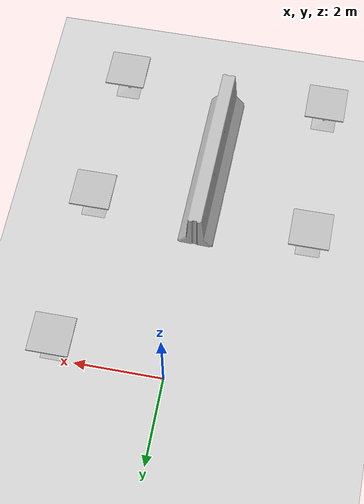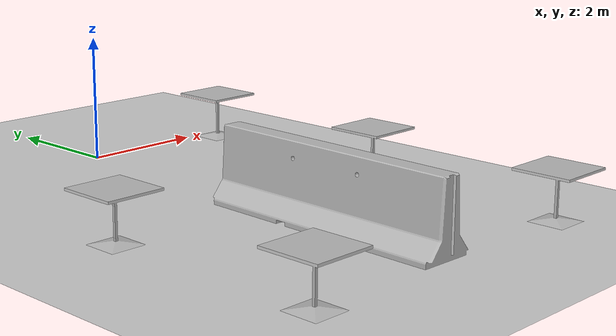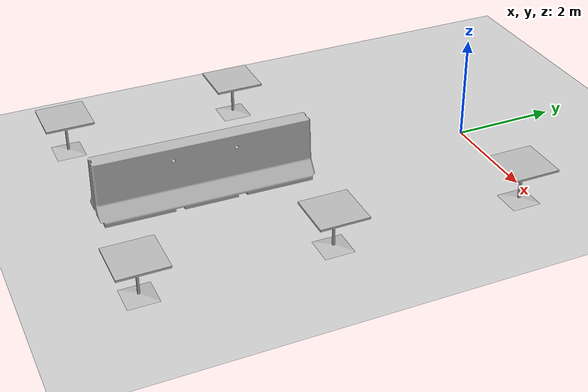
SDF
<sdf version="1.6">
 <world name="default">
  <light name="sun" type="directional">
   <pose>0 0 15 0 -0 0</pose>
   <diffuse>1 1 1 1</diffuse>
   <specular>0.1 0.1 0.1 1</specular>
   <attenuation>
    <range>1000</range>
    <constant>0.9</constant>
    <linear>0.01</linear>
    <quadratic>0.001</quadratic>
   </attenuation>
   <direction>-0.5 0.5 -1</direction>
  </light>
  <model name="ground_plane">
   <static>1</static>
   <link name="link">
    <collision name="collision">
     <geometry><plane><normal>0 0 1</normal><size>100 100</size></plane></geometry>
     <surface><friction><ode><mu>100</mu><mu2>50</mu2></ode></friction></surface>
    </collision>
    <visual name="visual">
     <transparency>1</transparency>
     <cast_shadows>0</cast_shadows>
     <geometry><plane><normal>0 0 1</normal><size>100 100</size></plane></geometry>
     <material>
      <script><uri>file://media/materials/scripts/gazebo.material</uri><name>Gazebo/Grey</name></script>
     </material>
    </visual>
   </link>
  </model>
  <gravity>0 0 -9.8</gravity>
  <magnetic_field>6e-06 2.3e-05 -4.2e-05</magnetic_field>
  <atmosphere type="adiabatic"/>
  <physics name="default_physics" default="0" type="ode">
   <max_step_size>0.001</max_step_size>
   <real_time_factor>1</real_time_factor>
   <real_time_update_rate>1000</real_time_update_rate>
  </physics>
  <scene><ambient>0.4 0.4 0.4 1</ambient><background>0.7 0.7 0.7 1</background><shadows>1</shadows></scene>
  <spherical_coordinates>
   <surface_model>EARTH_WGS84</surface_model>
   <latitude_deg>0</latitude_deg>
   <longitude_deg>0</longitude_deg>
   <elevation>0</elevation>
   <heading_deg>0</heading_deg>
  </spherical_coordinates>
  <model name="cafe_table">
   <static>1</static>
   <link name="link">
    <collision name="surface">
     <pose>0 0 0.755 0 -0 0</pose>
     <geometry><box><size>0.913 0.913 0.04</size></box></geometry>
    </collision>
    <collision name="column">
     <pose>0 0 0.37 0 -0 0</pose>
     <geometry><box><size>0.042 0.042 0.74</size></box></geometry>
    </collision>
    <collision name="base">
     <pose>0 0 0.02 0 -0 0</pose>
     <geometry><box><size>0.56 0.56 0.04</size></box></geometry>
    </collision>
    <visual name="visual">
     <geometry><mesh><uri>model://cafe_table/meshes/cafe_table.dae</uri></mesh></geometry>
    </visual>
   </link>
   <pose>-2.63102 -3.81805 0 0 -0 0</pose>
  </model>
  <model name="cafe_table_clone">
   <static>1</static>
   <link name="link">
    <collision name="surface">
     <pose>0 0 0.755 0 -0 0</pose>
     <geometry><box><size>0.913 0.913 0.04</size></box></geometry>
    </collision>
    <collision name="column">
     <pose>0 0 0.37 0 -0 0</pose>
     <geometry><box><size>0.042 0.042 0.74</size></box></geometry>
    </collision>
    <collision name="base">
     <pose>0 0 0.02 0 -0 0</pose>
     <geometry><box><size>0.56 0.56 0.04</size></box></geometry>
    </collision>
    <visual name="visual">
     <geometry><mesh><uri>model://cafe_table/meshes/cafe_table.dae</uri></mesh></geometry>
    </visual>
   </link>
   <pose>-2.51425 -7.25856 0 0 -0 0</pose>
  </model>
  <model name="cafe_table_clone_0">
   <static>1</static>
   <link name="link">
    <collision name="surface">
     <pose>0 0 0.755 0 -0 0</pose>
     <geometry><box><size>0.913 0.913 0.04</size></box></geometry>
    </collision>
    <collision name="column">
     <pose>0 0 0.37 0 -0 0</pose>
     <geometry><box><size>0.042 0.042 0.74</size></box></geometry>
    </collision>
    <collision name="base">
     <pose>0 0 0.02 0 -0 0</pose>
     <geometry><box><size>0.56 0.56 0.04</size></box></geometry>
    </collision>
    <visual name="visual">
     <geometry><mesh><uri>model://cafe_table/meshes/cafe_table.dae</uri></mesh></geometry>
    </visual>
   </link>
   <pose>2.30451 -7.34544 0 0 -0 0</pose>
  </model>
  <model name="cafe_table_clone_1">
   <static>1</static>
   <link name="link">
    <collision name="surface">
     <pose>0 0 0.755 0 -0 0</pose>
     <geometry><box><size>0.913 0.913 0.04</size></box></geometry>
    </collision>
    <collision name="column">
     <pose>0 0 0.37 0 -0 0</pose>
     <geometry><box><size>0.042 0.042 0.74</size></box></geometry>
    </collision>
    <collision name="base">
     <pose>0 0 0.02 0 -0 0</pose>
     <geometry><box><size>0.56 0.56 0.04</size></box></geometry>
    </collision>
    <visual name="visual">
     <geometry><mesh><uri>model://cafe_table/meshes/cafe_table.dae</uri></mesh></geometry>
    </visual>
   </link>
   <pose>2.39729 -3.94001 0 0 -0 0</pose>
  </model>
  <model name="cafe_table_clone_2">
   <static>1</static>
   <link name="link">
    <collision name="surface">
     <pose>0 0 0.755 0 -0 0</pose>
     <geometry><box><size>0.913 0.913 0.04</size></box></geometry>
    </collision>
    <collision name="column">
     <pose>0 0 0.37 0 -0 0</pose>
     <geometry><box><size>0.042 0.042 0.74</size></box></geometry>
    </collision>
    <collision name="base">
     <pose>0 0 0.02 0 -0 0</pose>
     <geometry><box><size>0.56 0.56 0.04</size></box></geometry>
    </collision>
    <visual name="visual">
     <geometry><mesh><uri>model://cafe_table/meshes/cafe_table.dae</uri></mesh></geometry>
    </visual>
   </link>
   <pose>2.47633 -0.274083 0 0 -0 0</pose>
  </model>
  <model name="jersey_barrier">
   <static>1</static>
   <link name="link">
    <visual name="visual">
     <geometry><mesh><uri>model://jersey_barrier/meshes/jersey_barrier.dae</uri></mesh></geometry>
    </visual>
    <collision name="upright">
     <pose>0 0 0.5715 0 -0 0</pose>
     <geometry><box><size>4.06542 0.3063 1.143</size></box></geometry>
    </collision>
    <collision name="base">
     <pose>0 0 0.032258 0 -0 0</pose>
     <geometry><box><size>4.06542 0.8107 0.064516</size></box></geometry>
    </collision>
    <collision name="base2">
     <pose>0 0 0.1 0 -0 0</pose>
     <geometry><box><size>4.06542 0.65 0.1</size></box></geometry>
    </collision>
    <collision name="base3">
     <pose>0 0 0.2 0 -0 0</pose>
     <geometry><box><size>4.06542 0.5 0.1</size></box></geometry>
    </collision>
    <collision name="left-angle">
     <pose>0 -0.224 0.2401 0.9 -0 0</pose>
     <geometry><box><size>4.06542 0.5 0.064516</size></box></geometry>
    </collision>
    <collision name="right-angle">
     <pose>0 0.224 0.2401 -0.9 0 0</pose>
     <geometry><box><size>4.06542 0.5 0.064516</size></box></geometry>
    </collision>
   </link>
   <pose>-0.107287 -5.34567 0 0 -0 1.55</pose>
  </model>
 </world>
</sdf>
